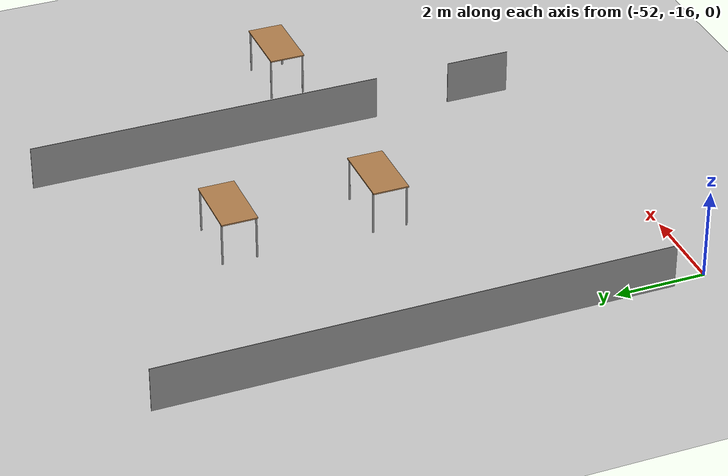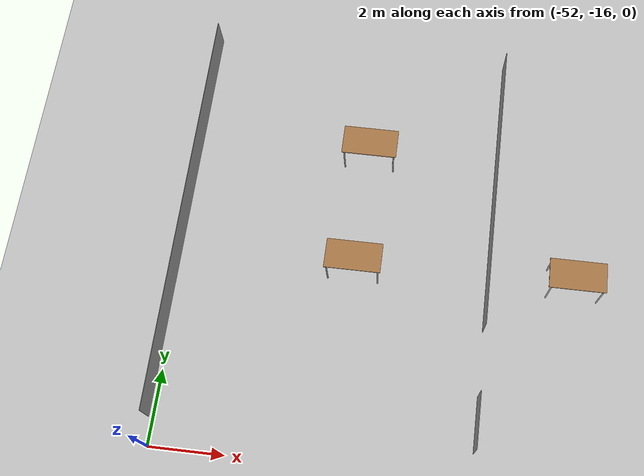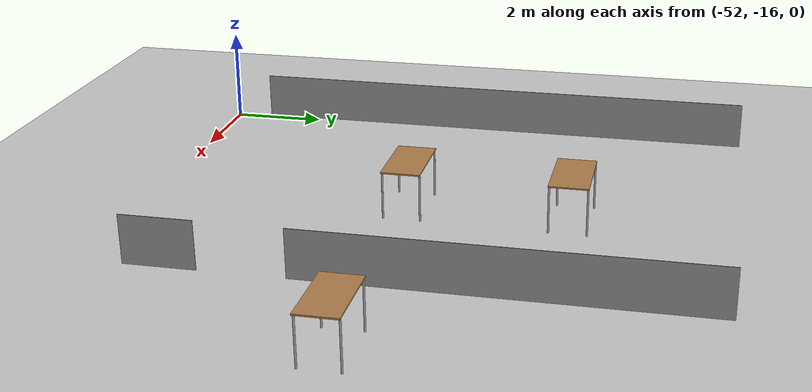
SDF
<sdf version="1.6">
 <world name="default">
  <model name="ground_plane">
   <static>1</static>
   <link name="link">
    <collision name="collision">
     <geometry><plane><normal>0 0 1</normal><size>100 100</size></plane></geometry>
     <surface>
      <contact><collide_bitmask>65535</collide_bitmask></contact>
      <friction><ode><mu>100</mu><mu2>50</mu2></ode></friction>
     </surface>
    </collision>
    <visual name="visual">
     <cast_shadows>0</cast_shadows>
     <geometry><plane><normal>0 0 1</normal><size>100 100</size></plane></geometry>
     <material>
      <script><uri>file://media/materials/scripts/gazebo.material</uri><name>Gazebo/Grey</name></script>
     </material>
    </visual>
   </link>
  </model>
  <model name="unit_box_0_clone_clone_clone_0">
   <static>1</static>
   <pose>-52.1311 -9.63644 0.5 0 -0 0</pose>
   <link name="link">
    <inertial>
     <mass>1</mass>
     <inertia>
      <ixx>0.166667</ixx>
      <ixy>0</ixy>
      <ixz>0</ixz>
      <iyy>0.166667</iyy>
      <iyz>0</iyz>
      <izz>0.166667</izz>
     </inertia>
    </inertial>
    <collision name="collision"><geometry><box><size>0.015785 11.23237 1</size></box></geometry></collision>
    <visual name="visual">
     <geometry><box><size>0.015785 11.23237 1</size></box></geometry>
     <material>
      <script><name>Gazebo/Grey</name><uri>file://media/materials/scripts/gazebo.material</uri></script>
     </material>
    </visual>
   </link>
  </model>
  <model name="unit_box_0_clone_clone_clone_0_clone">
   <static>1</static>
   <pose>-43.745 -8.06353 0.5 0 -0 0</pose>
   <link name="link">
    <inertial>
     <mass>1</mass>
     <inertia>
      <ixx>0.166667</ixx>
      <ixy>0</ixy>
      <ixz>0</ixz>
      <iyy>0.166667</iyy>
      <iyz>0</iyz>
      <izz>0.166667</izz>
     </inertia>
    </inertial>
    <collision name="collision"><geometry><box><size>0.015785 8.00153 1</size></box></geometry></collision>
    <visual name="visual">
     <geometry><box><size>0.015785 8.00153 1</size></box></geometry>
     <material>
      <script><name>Gazebo/Grey</name><uri>file://media/materials/scripts/gazebo.material</uri></script>
     </material>
    </visual>
   </link>
  </model>
  <model name="unit_box_0_clone_clone_clone_0_clone_0">
   <static>1</static>
   <pose>-43.7417 -14.521 0.5 0 -0 0</pose>
   <link name="link">
    <inertial>
     <mass>1</mass>
     <inertia>
      <ixx>0.166667</ixx>
      <ixy>0</ixy>
      <ixz>0</ixz>
      <iyy>0.166667</iyy>
      <iyz>0</iyz>
      <izz>0.166667</izz>
     </inertia>
    </inertial>
    <collision name="collision"><geometry><box><size>0.015785 1.45793 1</size></box></geometry></collision>
    <visual name="visual">
     <geometry><box><size>0.015785 1.45793 1</size></box></geometry>
     <material>
      <script><name>Gazebo/Grey</name><uri>file://media/materials/scripts/gazebo.material</uri></script>
     </material>
    </visual>
   </link>
  </model>
  <model name="table_clone_32">
   <static>1</static>
   <link name="link">
    <collision name="surface">
     <pose>0 0 1 0 -0 0</pose>
     <geometry><box><size>1.5 0.8 0.03</size></box></geometry>
     <surface><friction><ode><mu>0.6</mu><mu2>0.6</mu2></ode></friction></surface>
    </collision>
    <visual name="visual1">
     <pose>0 0 1 0 -0 0</pose>
     <geometry><box><size>1.5 0.8 0.03</size></box></geometry>
     <material>
      <script><uri>file://media/materials/scripts/gazebo.material</uri><name>Gazebo/Wood</name></script>
     </material>
    </visual>
    <collision name="front_left_leg">
     <pose>0.68 0.38 0.5 0 -0 0</pose>
     <geometry><cylinder><radius>0.02</radius><length>1</length></cylinder></geometry>
    </collision>
    <visual name="front_left_leg">
     <pose>0.68 0.38 0.5 0 -0 0</pose>
     <geometry><cylinder><radius>0.02</radius><length>1</length></cylinder></geometry>
     <material>
      <script><uri>file://media/materials/scripts/gazebo.material</uri><name>Gazebo/Grey</name></script>
     </material>
    </visual>
    <collision name="front_right_leg">
     <pose>0.68 -0.38 0.5 0 -0 0</pose>
     <geometry><cylinder><radius>0.02</radius><length>1</length></cylinder></geometry>
    </collision>
    <visual name="front_right_leg">
     <pose>0.68 -0.38 0.5 0 -0 0</pose>
     <geometry><cylinder><radius>0.02</radius><length>1</length></cylinder></geometry>
     <material>
      <script><uri>file://media/materials/scripts/gazebo.material</uri><name>Gazebo/Grey</name></script>
     </material>
    </visual>
    <collision name="back_right_leg">
     <pose>-0.68 -0.38 0.5 0 -0 0</pose>
     <geometry><cylinder><radius>0.02</radius><length>1</length></cylinder></geometry>
    </collision>
    <visual name="back_right_leg">
     <pose>-0.68 -0.38 0.5 0 -0 0</pose>
     <geometry><cylinder><radius>0.02</radius><length>1</length></cylinder></geometry>
     <material>
      <script><uri>file://media/materials/scripts/gazebo.material</uri><name>Gazebo/Grey</name></script>
     </material>
    </visual>
    <collision name="back_left_leg">
     <pose>-0.68 0.38 0.5 0 -0 0</pose>
     <geometry><cylinder><radius>0.02</radius><length>1</length></cylinder></geometry>
    </collision>
    <visual name="back_left_leg">
     <pose>-0.68 0.38 0.5 0 -0 0</pose>
     <geometry><cylinder><radius>0.02</radius><length>1</length></cylinder></geometry>
     <material>
      <script><uri>file://media/materials/scripts/gazebo.material</uri><name>Gazebo/Grey</name></script>
     </material>
    </visual>
   </link>
   <pose>-41.4523 -10.5158 0 0 -0 0</pose>
  </model>
  <model name="table_clone_33">
   <static>1</static>
   <link name="link">
    <collision name="surface">
     <pose>0 0 1 0 -0 0</pose>
     <geometry><box><size>1.5 0.8 0.03</size></box></geometry>
     <surface><friction><ode><mu>0.6</mu><mu2>0.6</mu2></ode></friction></surface>
    </collision>
    <visual name="visual1">
     <pose>0 0 1 0 -0 0</pose>
     <geometry><box><size>1.5 0.8 0.03</size></box></geometry>
     <material>
      <script><uri>file://media/materials/scripts/gazebo.material</uri><name>Gazebo/Wood</name></script>
     </material>
    </visual>
    <collision name="front_left_leg">
     <pose>0.68 0.38 0.5 0 -0 0</pose>
     <geometry><cylinder><radius>0.02</radius><length>1</length></cylinder></geometry>
    </collision>
    <visual name="front_left_leg">
     <pose>0.68 0.38 0.5 0 -0 0</pose>
     <geometry><cylinder><radius>0.02</radius><length>1</length></cylinder></geometry>
     <material>
      <script><uri>file://media/materials/scripts/gazebo.material</uri><name>Gazebo/Grey</name></script>
     </material>
    </visual>
    <collision name="front_right_leg">
     <pose>0.68 -0.38 0.5 0 -0 0</pose>
     <geometry><cylinder><radius>0.02</radius><length>1</length></cylinder></geometry>
    </collision>
    <visual name="front_right_leg">
     <pose>0.68 -0.38 0.5 0 -0 0</pose>
     <geometry><cylinder><radius>0.02</radius><length>1</length></cylinder></geometry>
     <material>
      <script><uri>file://media/materials/scripts/gazebo.material</uri><name>Gazebo/Grey</name></script>
     </material>
    </visual>
    <collision name="back_right_leg">
     <pose>-0.68 -0.38 0.5 0 -0 0</pose>
     <geometry><cylinder><radius>0.02</radius><length>1</length></cylinder></geometry>
    </collision>
    <visual name="back_right_leg">
     <pose>-0.68 -0.38 0.5 0 -0 0</pose>
     <geometry><cylinder><radius>0.02</radius><length>1</length></cylinder></geometry>
     <material>
      <script><uri>file://media/materials/scripts/gazebo.material</uri><name>Gazebo/Grey</name></script>
     </material>
    </visual>
    <collision name="back_left_leg">
     <pose>-0.68 0.38 0.5 0 -0 0</pose>
     <geometry><cylinder><radius>0.02</radius><length>1</length></cylinder></geometry>
    </collision>
    <visual name="back_left_leg">
     <pose>-0.68 0.38 0.5 0 -0 0</pose>
     <geometry><cylinder><radius>0.02</radius><length>1</length></cylinder></geometry>
     <material>
      <script><uri>file://media/materials/scripts/gazebo.material</uri><name>Gazebo/Grey</name></script>
     </material>
    </visual>
   </link>
   <pose>-47.3032 -7.29735 0 0 -0 0</pose>
  </model>
  <model name="table_clone_34">
   <static>1</static>
   <link name="link">
    <collision name="surface">
     <pose>0 0 1 0 -0 0</pose>
     <geometry><box><size>1.5 0.8 0.03</size></box></geometry>
     <surface><friction><ode><mu>0.6</mu><mu2>0.6</mu2></ode></friction></surface>
    </collision>
    <visual name="visual1">
     <pose>0 0 1 0 -0 0</pose>
     <geometry><box><size>1.5 0.8 0.03</size></box></geometry>
     <material>
      <script><uri>file://media/materials/scripts/gazebo.material</uri><name>Gazebo/Wood</name></script>
     </material>
    </visual>
    <collision name="front_left_leg">
     <pose>0.68 0.38 0.5 0 -0 0</pose>
     <geometry><cylinder><radius>0.02</radius><length>1</length></cylinder></geometry>
    </collision>
    <visual name="front_left_leg">
     <pose>0.68 0.38 0.5 0 -0 0</pose>
     <geometry><cylinder><radius>0.02</radius><length>1</length></cylinder></geometry>
     <material>
      <script><uri>file://media/materials/scripts/gazebo.material</uri><name>Gazebo/Grey</name></script>
     </material>
    </visual>
    <collision name="front_right_leg">
     <pose>0.68 -0.38 0.5 0 -0 0</pose>
     <geometry><cylinder><radius>0.02</radius><length>1</length></cylinder></geometry>
    </collision>
    <visual name="front_right_leg">
     <pose>0.68 -0.38 0.5 0 -0 0</pose>
     <geometry><cylinder><radius>0.02</radius><length>1</length></cylinder></geometry>
     <material>
      <script><uri>file://media/materials/scripts/gazebo.material</uri><name>Gazebo/Grey</name></script>
     </material>
    </visual>
    <collision name="back_right_leg">
     <pose>-0.68 -0.38 0.5 0 -0 0</pose>
     <geometry><cylinder><radius>0.02</radius><length>1</length></cylinder></geometry>
    </collision>
    <visual name="back_right_leg">
     <pose>-0.68 -0.38 0.5 0 -0 0</pose>
     <geometry><cylinder><radius>0.02</radius><length>1</length></cylinder></geometry>
     <material>
      <script><uri>file://media/materials/scripts/gazebo.material</uri><name>Gazebo/Grey</name></script>
     </material>
    </visual>
    <collision name="back_left_leg">
     <pose>-0.68 0.38 0.5 0 -0 0</pose>
     <geometry><cylinder><radius>0.02</radius><length>1</length></cylinder></geometry>
    </collision>
    <visual name="back_left_leg">
     <pose>-0.68 0.38 0.5 0 -0 0</pose>
     <geometry><cylinder><radius>0.02</radius><length>1</length></cylinder></geometry>
     <material>
      <script><uri>file://media/materials/scripts/gazebo.material</uri><name>Gazebo/Grey</name></script>
     </material>
    </visual>
   </link>
   <pose>-47.3567 -10.6345 0 0 -0 0</pose>
  </model>
 </world>
</sdf>
